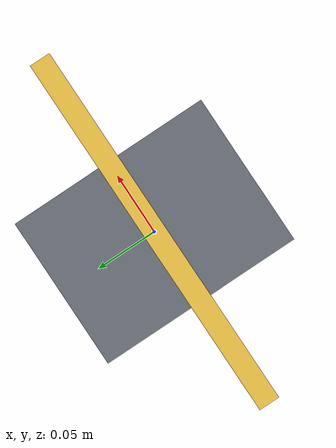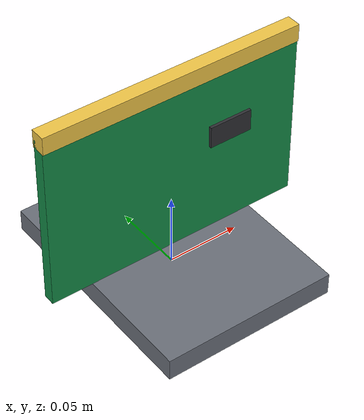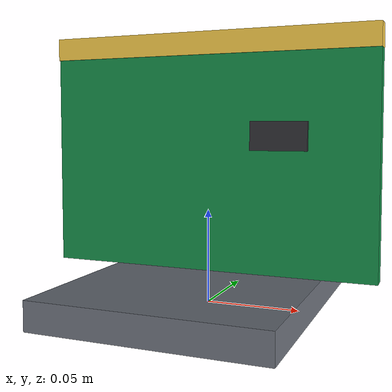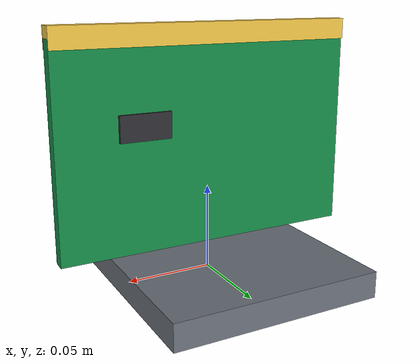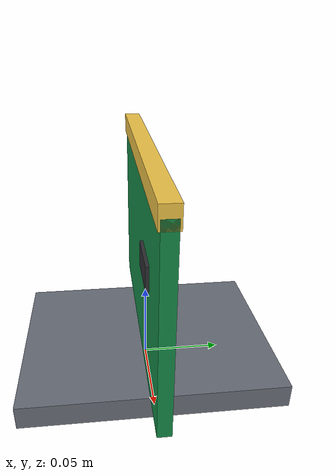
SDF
<?xml version="1.0"?>
<sdf version="1.6">
  <!-- 板卡(可抓取):PCB 板面 + 底部支撑脚自立,金手指视觉,板厚 0.008 < 夹爪开度可侧向夹取。 -->
  <model name="pcb_board">
    <link name="link">
      <inertial>
        <mass>0.08</mass>
        <inertia>
          <ixx>1.8e-4</ixx><ixy>0</ixy><ixz>0</ixz>
          <iyy>1.6e-4</iyy><iyz>0</iyz><izz>3.0e-4</izz>
        </inertia>
      </inertial>
      <!-- 底部支撑脚(自立) -->
      <collision name="collision_base">
        <pose>0 0 0.0075 0 0 0</pose>
        <geometry><box><size>0.12 0.16 0.015</size></box></geometry>
        <surface>
          <friction><ode><mu>1.0</mu><mu2>1.0</mu2></ode></friction>
          <contact>
            <ode>
              <kp>1e6</kp>
              <kd>1.0</kd>
              <min_depth>0.001</min_depth>
              <max_vel>0.01</max_vel>
            </ode>
          </contact>
        </surface>
      </collision>
      <visual name="visual_base">
        <pose>0 0 0.0075 0 0 0</pose>
        <geometry><box><size>0.12 0.16 0.015</size></box></geometry>
        <material>
          <ambient>0.25 0.25 0.28 1</ambient>
          <diffuse>0.42 0.44 0.48 1</diffuse>
          <specular>0.15 0.15 0.15 1</specular>
          <shininess>24</shininess>
        </material>
      </visual>
      <!-- PCB 板面(立起,朝 ±y) -->
      <collision name="collision_board">
        <pose>0 0 0.078 0 0 0</pose>
        <geometry><box><size>0.18 0.008 0.12</size></box></geometry>
        <surface>
          <friction><ode><mu>1.0</mu><mu2>1.0</mu2></ode></friction>
          <contact>
            <ode>
              <kp>1e6</kp>
              <kd>1.0</kd>
              <min_depth>0.001</min_depth>
              <max_vel>0.01</max_vel>
            </ode>
          </contact>
        </surface>
      </collision>
      <visual name="visual_board">
        <pose>0 0 0.078 0 0 0</pose>
        <geometry><box><size>0.18 0.008 0.12</size></box></geometry>
        <material>
          <ambient>0.05 0.35 0.18 1</ambient>
          <diffuse>0.08 0.55 0.28 1</diffuse>
          <specular>0.15 0.15 0.15 1</specular>
          <shininess>32</shininess>
        </material>
      </visual>
      <!-- 金手指条(顶缘视觉) -->
      <visual name="visual_gold_fingers">
        <pose>0 0 0.1385 0 0 0</pose>
        <geometry><box><size>0.18 0.010 0.012</size></box></geometry>
        <material>
          <ambient>0.78 0.62 0.20 1</ambient>
          <diffuse>0.95 0.78 0.28 1</diffuse>
          <specular>0.4 0.4 0.4 1</specular>
          <shininess>64</shininess>
        </material>
      </visual>
      <!-- 板面元件小凸起(视觉) -->
      <visual name="visual_component">
        <pose>0.04 0 0.09 0 0 0</pose>
        <geometry><box><size>0.03 0.012 0.015</size></box></geometry>
        <material>
          <ambient>0.10 0.10 0.12 1</ambient>
          <diffuse>0.18 0.18 0.20 1</diffuse>
        </material>
      </visual>
    </link>
  </model>
</sdf>
